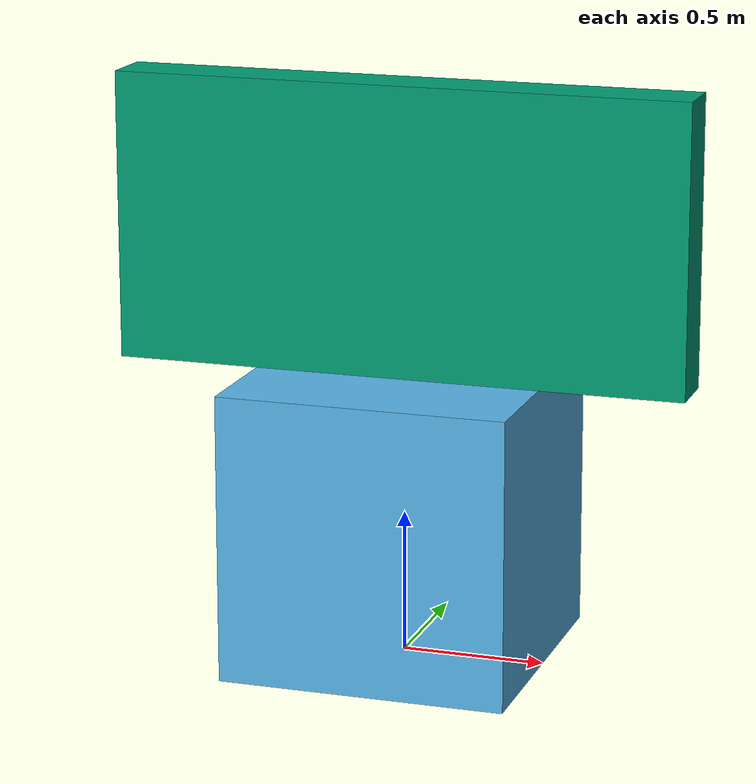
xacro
<?xml version="1.0"?>

<robot name="simple_box">
    <material name = "blue">
    <color rgba= "0 0 1 "/>
    </material>
    <material name = "red">
        <color rgba = "1.0 0.0 0.0"/>
    </material>
    <material name = "green">
        <color rgba = "0.0 1.0 0.0"/>
    </material>
    <material name = "white">
        <color rgba = "0.0 0.0 0.0"/>
    </material>

<link name="dummy"/>
<joint name="dummy_joint" type="fixed">
<parent link="dummy"/>
<child link="base_link"/>
</joint>

<link name="base_link">
    <inertial>
      <origin xyz="2 0 0" />
      <mass value="1.0" />
      <inertia  ixx="1.0" ixy="0.0"  ixz="0.0"  iyy="100.0"  iyz="0.0"  izz="1.0" />
    </inertial>

    <visual>
      <origin xyz="0 0 0.5"/>
      <geometry>
        <box size="1 1 1" />
        <material name ="blue"/>
      </geometry>
    </visual>

    <collision>
      <origin xyz="0 0 0.5"/>
      <geometry>
        <box size="1 1 1" />
      </geometry>
    </collision>
  </link>

   <joint name="joint_0" type="revolute">
    <axis xyz="0 0 -1"/>
   <limit effort="30" velocity="1.0" lower="0" upper="180" />
            <parent link="base_link"/>
            <child link="top"/>
            <origin xyz ="0.0 0.0 0.5"/>
    </joint>

<link name="top">
    <inertial>
      <origin xyz="0 0 1" />
      <mass value="1.0" />
      <inertia  ixx="1.0" ixy="0.0"  ixz="0.0"  iyy="100.0"  iyz="0.0"  izz="1.0" />
    </inertial>

    <visual>
      <origin xyz="0 0 1"/>
      <geometry>
        <box size="2 0.2 1" />
        <material name ="red"/>
      </geometry>
    </visual>

    <collision>
      <origin xyz="0 0 1"/>
      <geometry>
        <box size="2 0.2 1" />
      </geometry>
    </collision>
  </link>

</robot>
